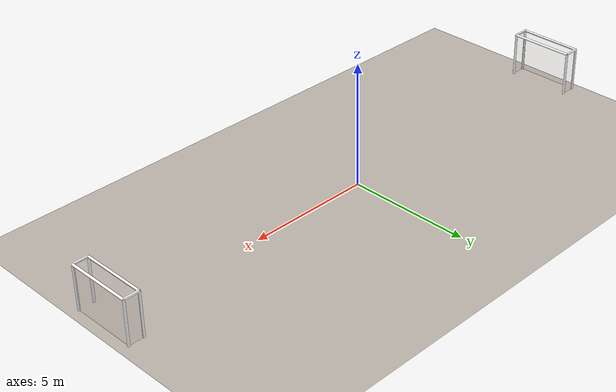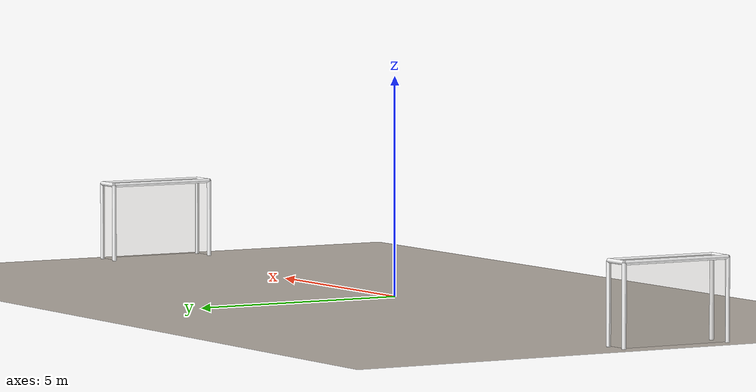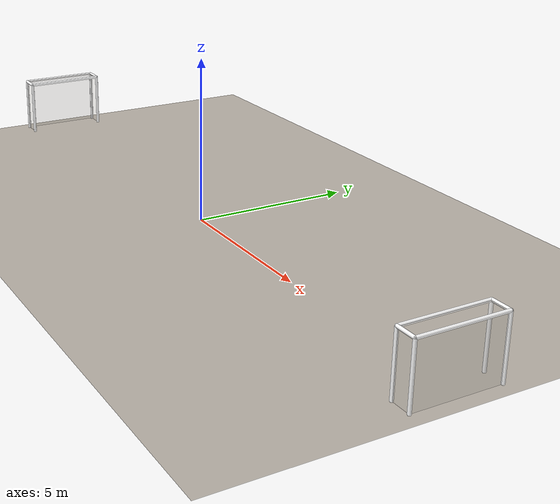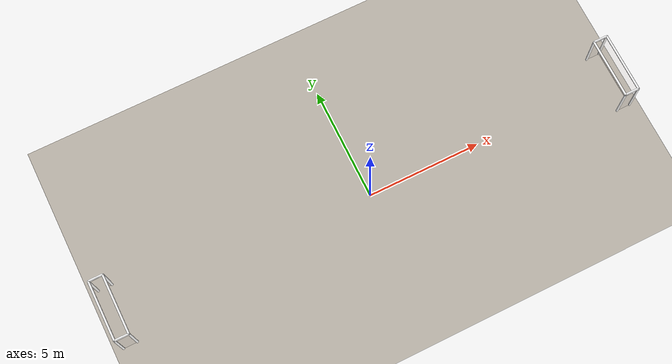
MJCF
<mujoco model="field">
    <asset>
        <texture name="soccer_field_tex" file="../textures/fieldRCAP.png" type="2d" />
        <material name="soccer_field_mat" texture="soccer_field_tex" texrepeat="1 1" rgba="1 1 1 1" />

        <texture name="goal_net_tex" file="../textures/net.png" type="2d" />
        <material name="goal_net_mat" texture="goal_net_tex" rgba="1 1 1 0.15"/>
    </asset>

    <worldbody>
        <geom name="ground" type="plane" pos="0 0 0" size="12 8 0.001"
              material="soccer_field_mat" condim="3" friction="0.8 0.1 0.1" />

        <body name="goal_left" pos="-11 0 0">

            <!-- front goal post -->
            <geom type="capsule" size="0.05 0.9"
                  fromto="0 -1.3 0 0 -1.3 1.8" rgba="1 1 1 1"/>
            <geom type="capsule" size="0.05 0.9"
                  fromto="0  1.3 0 0  1.3 1.8" rgba="1 1 1 1"/>
            <geom type="capsule" size="0.05 0.8"
                  fromto="0 -1.3 1.8 0 1.3 1.8" rgba="1 1 1 1"/>

            <!-- crossbar connectors -->
            <geom type="capsule" size="0.05 0.8"
                  fromto="0 -1.3 1.8 -0.6 -1.3 1.8" rgba="1 1 1 1"/>
            <geom type="capsule" size="0.05 0.8"
                  fromto="0 1.3 1.8 -0.6 1.3 1.8" rgba="1 1 1 1"/>

            <!-- back goal post -->
            <geom type="capsule" size="0.05 0.9"
                  fromto="-0.6 -1.3 0 -0.6 -1.3 1.8" rgba="1 1 1 1"/>
            <geom type="capsule" size="0.05 0.9"
                  fromto="-0.6  1.3 0 -0.6 1.3 1.8" rgba="1 1 1 1"/>
            <geom type="capsule" size="0.05 0.8"
                  fromto="-0.6 -1.3 1.8 -0.6 1.3 1.8" rgba="1 1 1 1"/>

            <geom name="net_back_L" type="box" size="0.01 1.3 0.9"
                  pos="-0.6 0 0.9" material="goal_net_mat"
                  contype="0" conaffinity="0"/>
            <geom name="net_sideL_L" type="box" size="0.3 0.01 0.9"
                  pos="-0.3 -1.3 0.9" material="goal_net_mat"
                  contype="0" conaffinity="0"/>
            <geom name="net_sideR_L" type="box" size="0.3 0.01 0.9"
                  pos="-0.3  1.3 0.9" material="goal_net_mat"
                  contype="0" conaffinity="0"/>
            <geom name="net_top_L" type="box" size="0.3 1.3 0.01"
                  pos="-0.3 0 1.8" material="goal_net_mat"
                  contype="0" conaffinity="0"/>
        </body>

        <body name="goal_right" pos="11 0 0">

            <!-- front goal post -->
            <geom type="capsule" size="0.05 0.9"
                  fromto="0 -1.3 0 0 -1.3 1.8" rgba="1 1 1 1"/>
            <geom type="capsule" size="0.05 0.9"
                  fromto="0  1.3 0 0  1.3 1.8" rgba="1 1 1 1"/>
            <geom type="capsule" size="0.05 0.8"
                  fromto="0 -1.3 1.8 0 1.3 1.8" rgba="1 1 1 1"/>

            <!-- crossbar connectors -->
            <geom type="capsule" size="0.05 0.8"
                  fromto="0 -1.3 1.8 0.6 -1.3 1.8" rgba="1 1 1 1"/>
            <geom type="capsule" size="0.05 0.8"
                  fromto="0 1.3 1.8 0.6 1.3 1.8" rgba="1 1 1 1"/>

            <!-- back goal post -->
            <geom type="capsule" size="0.05 0.9"
                  fromto="0.6 -1.3 0 0.6 -1.3 1.8" rgba="1 1 1 1"/>
            <geom type="capsule" size="0.05 0.9"
                  fromto="0.6  1.3 0 0.6 1.3 1.8" rgba="1 1 1 1"/>
            <geom type="capsule" size="0.05 0.8"
                  fromto="0.6 -1.3 1.8 0.6 1.3 1.8" rgba="1 1 1 1"/>

            <geom name="net_back_R" type="box" size="0.01 1.3 0.9"
                  pos="0.6 0 0.9" material="goal_net_mat"
                  contype="0" conaffinity="0"/>
            <geom name="net_sideL_R" type="box" size="0.3 0.01 0.9"
                  pos="0.3 -1.3 0.9" material="goal_net_mat"
                  contype="0" conaffinity="0"/>
            <geom name="net_sideR_R" type="box" size="0.3 0.01 0.9"
                  pos="0.3  1.3 0.9" material="goal_net_mat"
                  contype="0" conaffinity="0"/>
            <geom name="net_top_R" type="box" size="0.3 1.3 0.01"
                  pos="0.3 0 1.8" material="goal_net_mat"
                  contype="0" conaffinity="0"/>
        </body>

    </worldbody>
</mujoco>
